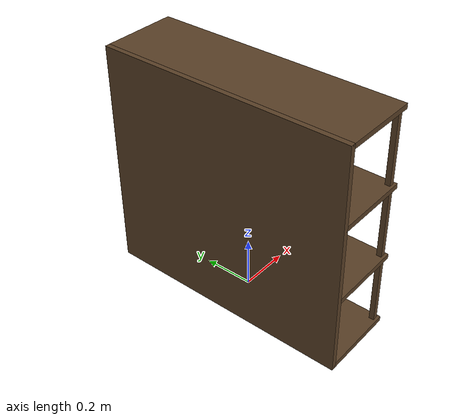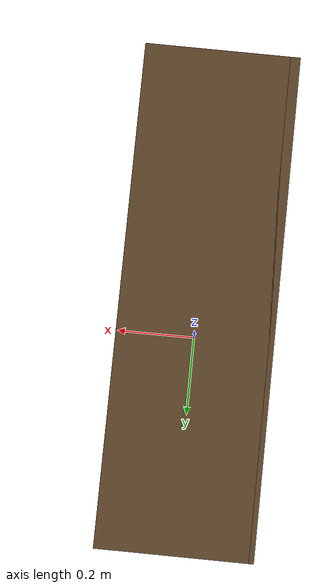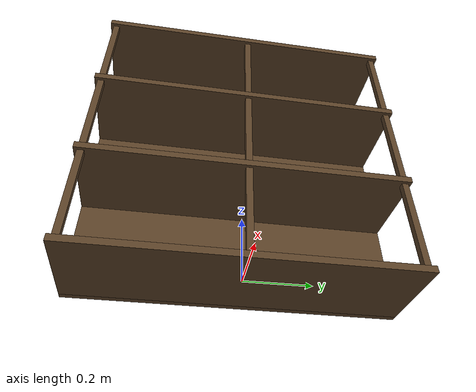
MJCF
<mujoco model="bookshelf_base">
  <compiler angle="radian"/>

  <asset>
    <texture type="2d" name="light_wood_base" file="light_wood_v3.png" />
    <material name="wood_mat_base" texture="light_wood_base" specular="0.5" shininess="0.5" rgba="0.5 0.5 0.5 1" />
  </asset>

  <worldbody>
    <body name="body_bookshelf_base" pos="0 0 0">
      <geom type="box" size="0.01 0.5 0.46" pos="-0.15 0.0 0.45" material="wood_mat_base" />

      <geom type="box" size="0.15 0.5 0.01" pos="0.0 0.0 0.0" material="wood_mat_base" />
      <geom type="box" size="0.15 0.5 0.01" pos="0.0 0.0 0.3" material="wood_mat_base" />
      <geom type="box" size="0.15 0.5 0.01" pos="0.0 0.0 0.6" material="wood_mat_base" />
      <geom type="box" size="0.15 0.5 0.01" pos="0.0 0.0 0.9" material="wood_mat_base" />
      <geom type="box" size="0.01 0.01 0.45" pos="0.13 0.48 0.45" material="wood_mat_base" />
      <geom type="box" size="0.01 0.01 0.45" pos="0.13 -0.48 0.45" material="wood_mat_base" />
      <geom type="box" size="0.01 0.01 0.45" pos="0.13 0.0 0.45" material="wood_mat_base" />

    </body>
  </worldbody>

</mujoco>
